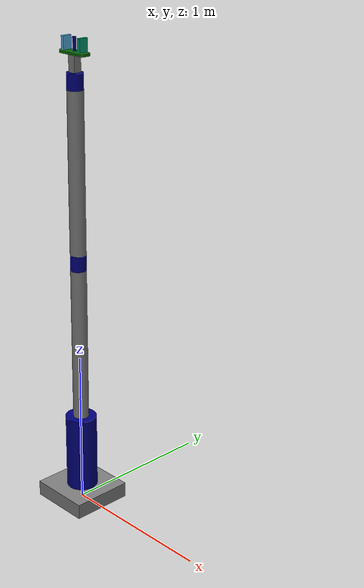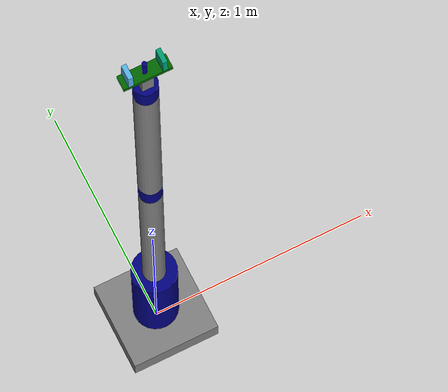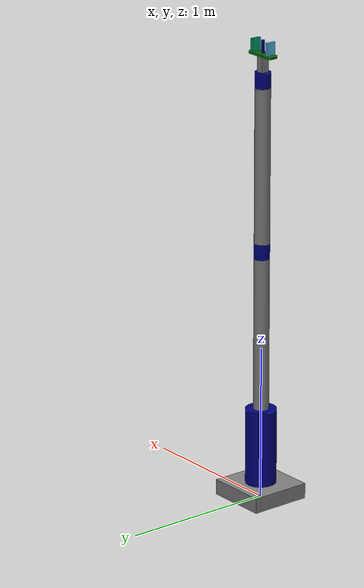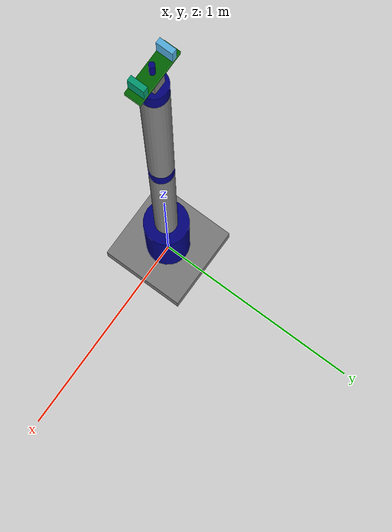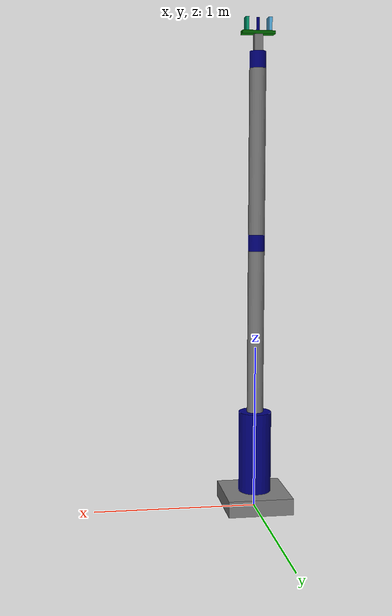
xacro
<?xml version="1.0"?>
<robot name="my_robot" xmlns:xacro="http://www.ros.org/wiki/xacro">

    <xacro:include filename="common_properities.xacro" />
    <xacro:include filename="arm.xacro" />
    <xacro:include filename="gripper.xacro" />
    <xacro:include filename="my_robot.ros2_control.xacro" />

    <joint name="gripper_base_joint" type="fixed">
        <parent link="shoulder_link6" />
        <child link="gripper_base_link" />
        <origin xyz="0 0 0" rpy="0 0 0" />
    </joint>

</robot>

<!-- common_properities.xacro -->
<robot name="my_robot" xmlns:xacro="http://www.ros.org/wiki/xacro">

    <material name="grey">
        <color rgba="0.5 0.5 0.5 1" />
    </material>

    <material name="blue">
        <color rgba="0 0 0.5 1" />
    </material>

</robot>

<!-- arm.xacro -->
<robot name="my_robot">

    <link name="base_link">
        <visual>
            <geometry>
                <box size="0.4 0.4 0.1" />
            </geometry>
            <origin xyz="0 0 0.05" rpy="0 0 0" />
            <material name="grey"/>
        </visual>
        <collision>
            <geometry>
                <box size="0.4 0.4 0.1" />
            </geometry>
            <origin xyz="0 0 0.05" rpy="0 0 0" />
        </collision>
    </link>

    <link name="shoulder_link">
        <visual>
            <geometry>
                <cylinder length="0.5" radius="0.1"/>
            </geometry>
            <origin xyz="0 0 0.25" rpy="0 0 0" />
            <material name="blue" />
        </visual>
        <collision>
            <geometry>
                <cylinder length="0.5" radius="0.1"/>
            </geometry>
            <origin xyz="0 0 0.25" rpy="0 0 0" />
        </collision>
    </link>

    <link name="shoulder_link1">
        <visual>
            <geometry>
                <cylinder length="1.0" radius="0.05"/>
            </geometry>
            <origin xyz="0 0 0.5" rpy="0 0 0" />
            <material name="grey" />
        </visual>
        <collision>
            <geometry>
                <cylinder length="1.0" radius="0.05"/>
            </geometry>
            <origin xyz="0 0 0.5" rpy="0 0 0" />
        </collision>
    </link>

    <link name="shoulder_link2">
        <visual>
            <geometry>
                <cylinder length="0.1" radius="0.05"/>
            </geometry>
            <origin xyz="0 0 0.05" rpy="0 0 0" />
            <material name="blue" />
        </visual>
        <collision>
            <geometry>
                <cylinder length="0.1" radius="0.05"/>
            </geometry>
            <origin xyz="0 0 0.05" rpy="0 0 0" />
        </collision>
    </link>

    <link name="shoulder_link3">
        <visual>
            <geometry>
                <cylinder length="1.0" radius="0.05"/>
            </geometry>
            <origin xyz="0 0 0.5" rpy="0 0 0" />
            <material name="grey" />
        </visual>
        <collision>
            <geometry>
                <cylinder length="1.0" radius="0.05"/>
            </geometry>
            <origin xyz="0 0 0.5" rpy="0 0 0" />
        </collision>
    </link>

    <link name="shoulder_link4">
        <visual>
            <geometry>
                <cylinder length="0.1" radius="0.05"/>
            </geometry>
            <origin xyz="0 0 0.05" rpy="0 0 0" />
            <material name="blue" />
        </visual>
        <collision>
            <geometry>
                <cylinder length="0.1" radius="0.05"/>
            </geometry>
            <origin xyz="0 0 0.05" rpy="0 0 0" />
        </collision>
    </link>

    <link name="shoulder_link5">
        <visual>
            <geometry>
                <box size="0.05 0.05 0.1" />
            </geometry>
            <origin xyz="0 0 0.05" rpy="0 0 0" />
            <material name="grey"/>
        </visual>
        <collision>
            <geometry>
                <box size="0.05 0.05 0.1" />
            </geometry>
            <origin xyz="0 0 0.05" rpy="0 0 0" />
        </collision>
    </link>

    <link name="shoulder_link6">
        <visual>
            <geometry>
                <cylinder length="0.1" radius="0.01"/>
            </geometry>
            <origin xyz="0 0 0.05" rpy="0 0 0" />
            <material name="blue" />
        </visual>
        <collision>
            <geometry>
                <cylinder length="0.1" radius="0.01"/>
            </geometry>
            <origin xyz="0 0 0.05" rpy="0 0 0" />
        </collision>
    </link>

    <joint name="joint1" type="revolute">
        <parent link="base_link" />
        <child link="shoulder_link" />
        <origin xyz="0 0 0.1" rpy="0 0 0" />
        <axis xyz="0 0 1" />
        <limit effort="1000.0" velocity="1.0" lower="-3.14" upper="3.14" />
    </joint>

    <joint name="joint2" type="revolute">
        <parent link="shoulder_link" />
        <child link="shoulder_link1" />
        <origin xyz="0 0 0.5" rpy="0 0 0" />
        <axis xyz="0 1 0" />
        <limit effort="1000.0" velocity="1.0" lower="-3.14" upper="3.14" />
    </joint>

    <joint name="joint3" type="revolute">
        <parent link="shoulder_link1" />
        <child link="shoulder_link2" />
        <origin xyz="0 0 1.0" rpy="0 0 0" />
        <axis xyz="0 1 0" />
        <limit effort="1000.0" velocity="1.0" lower="-3.14" upper="3.14" />
    </joint>

    <joint name="joint4" type="revolute">
        <parent link="shoulder_link2" />
        <child link="shoulder_link3" />
        <origin xyz="0 0 0.1" rpy="0 0 0" />
        <axis xyz="0 0 1" />
        <limit effort="1000.0" velocity="1.0" lower="-3.14" upper="3.14" />
    </joint>

    <joint name="joint5" type="revolute">
        <parent link="shoulder_link3" />
        <child link="shoulder_link4" />
        <origin xyz="0 0 1.0" rpy="0 0 0" />
        <axis xyz="0 1 0" />
        <limit effort="1000.0" velocity="1.0" lower="-1.57" upper="1.57" />
    </joint>

    <joint name="joint6" type="continuous">
        <parent link="shoulder_link4" />
        <child link="shoulder_link5" />
        <origin xyz="0 0 0.1" rpy="0 0 0" />
        <axis xyz="0 0 1" />
    </joint>

    <joint name="joint7" type="fixed">
        <parent link="shoulder_link5" />
        <child link="shoulder_link6" />
        <origin xyz="0 0 0.1" rpy="0 0 0" />
    </joint>
</robot>

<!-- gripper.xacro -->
<robot name="temp" xmlns:xacro="http://www.ros.org/wiki/xacro">

    <material name="dark_green">
        <color rgba="0 0.4 0 1" />
    </material>

    <material name="light_green">
        <color rgba="0 0.6 0 1" />
    </material>

    <link name="gripper_base_link">
        <visual>
            <geometry>
                <box size="0.2 0.06 0.02" />
            </geometry>
            <origin xyz="0 0 0.01" rpy="0 0 0" />
            <material name="dark_green"/>
        </visual>
        <collision>
            <geometry>
                <box size="0.2 0.06 0.02" />
            </geometry>
            <origin xyz="0 0 0.01" rpy="0 0 0" />
        </collision>
    </link>

    <link name="gripper_left_finger_link">
        <visual>
            <geometry>
                <box size="0.02 0.06 0.08" />
            </geometry>
            <origin xyz="0 0 0.04" rpy="0 0 0" />
        </visual>
        <collision>
            <geometry>
                <box size="0.02 0.06 0.08" />
            </geometry>
            <origin xyz="0 0 0.04" rpy="0 0 0" />
        </collision>
    </link>

    <link name="gripper_right_finger_link">
        <visual>
            <geometry>
                <box size="0.02 0.06 0.08" />
            </geometry>
            <origin xyz="0 0 0.04" rpy="0 0 0" />
        </visual>
        <collision>
            <geometry>
                <box size="0.02 0.06 0.08" />
            </geometry>
            <origin xyz="0 0 0.04" rpy="0 0 0" />
        </collision>
    </link>

    <joint name="gripper_left_finger_joint" type="prismatic">
        <parent link="gripper_base_link" />
        <child link="gripper_left_finger_link" />
        <origin xyz="-0.07 0 0.02" rpy="0 0 0" />
        <axis xyz="1 0 0" />
        <limit effort="1000.0" velocity="1.0" lower="0.0" upper="0.06" />
    </joint>

    <joint name="gripper_right_finger_joint" type="prismatic">
        <parent link="gripper_base_link" />
        <child link="gripper_right_finger_link" />
        <origin xyz="0.07 0 0.02" rpy="0 0 0" />
        <axis xyz="1 0 0" />
        <mimic joint="gripper_left_finger_joint" multiplier="-1.0" />
        <limit effort="1000.0" velocity="1.0" lower="-0.06" upper="0.0" />
    </joint>
</robot>
